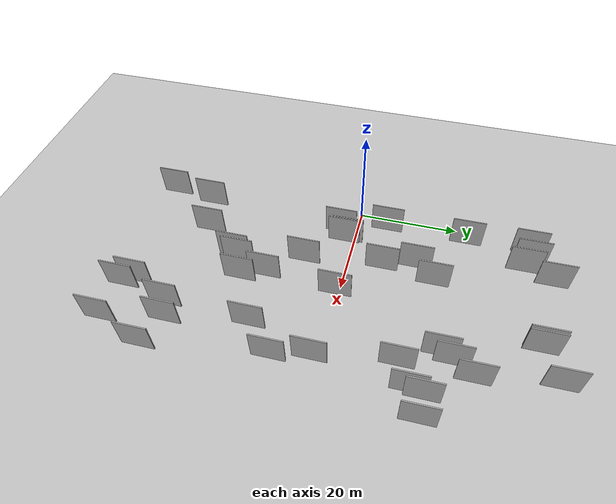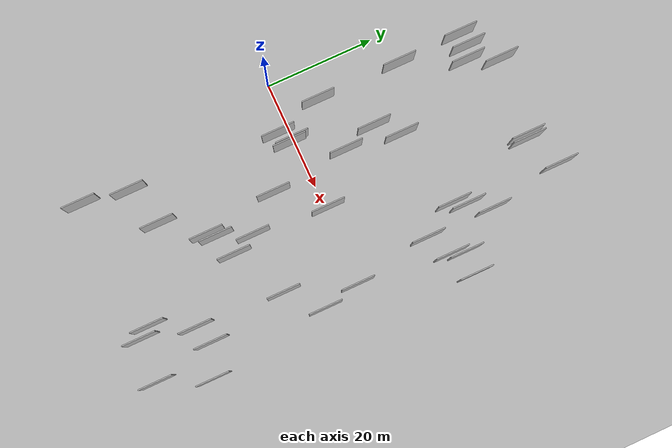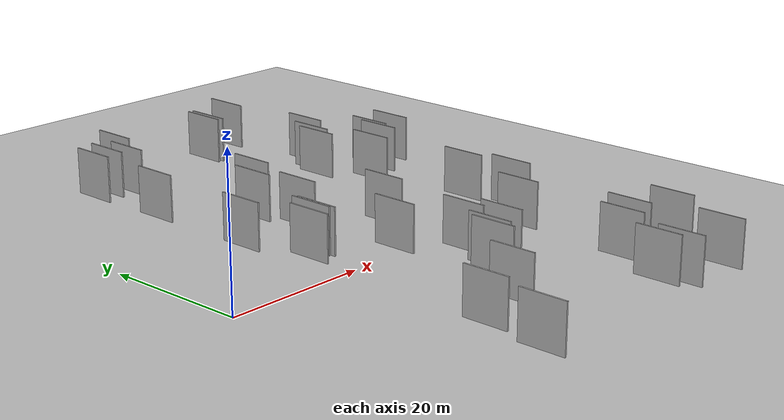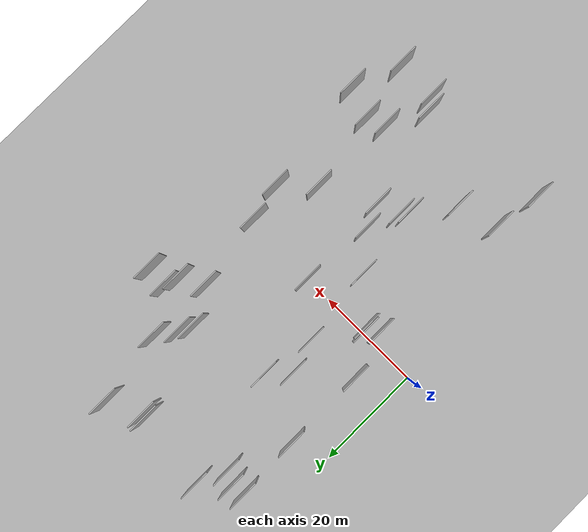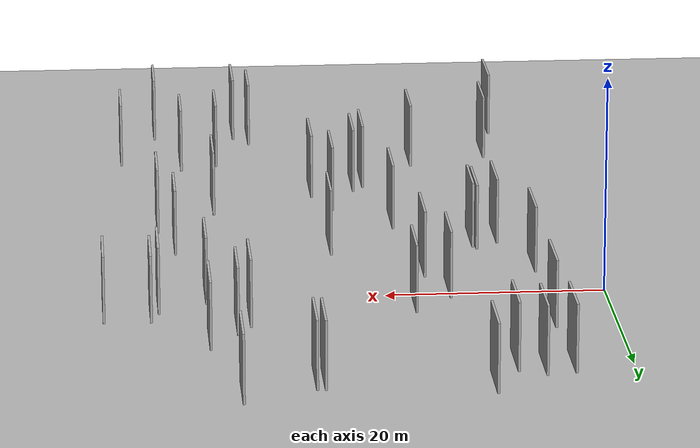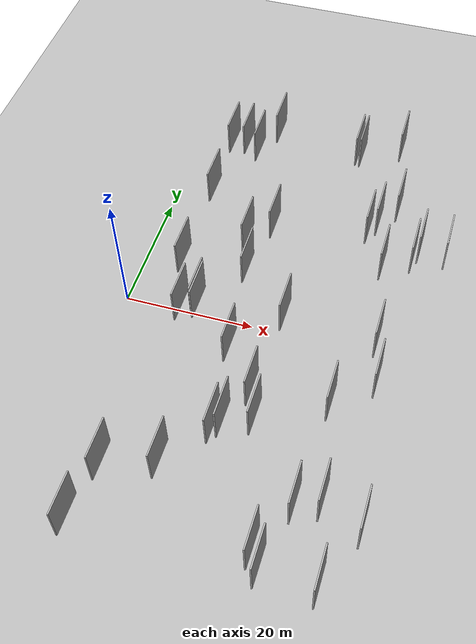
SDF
<?xml version="1.0" encoding="utf-8"?>

<sdf version="1.6">

   <world name="default">

      <gui fullscreen="0">

         <camera name="user_camera">

            <pose>-15 0 4.57585 0 0 0</pose>

            <view_controller>orbit</view_controller>

         </camera>

      </gui>

      <scene>

         <sky>

           <clouds>

             <speed>12</speed>

           </clouds>

         </sky>

         <ambient>0.4 0.4 0.4 1</ambient>

         <background>0.7 0.7 0.7 1</background>

         <shadows>1</shadows>

      </scene>

      <gravity>0 0 -9.8066</gravity>

      <magnetic_field>6e-06 2.3e-05 -4.2e-05</magnetic_field>

      <physics default="0" name="default_physics" type="ode">

         <ode>

            <solver>

               <type>quick</type>

               <iters>10</iters>

               <sor>1.0</sor>

               <use_dynamic_moi_rescaling>0</use_dynamic_moi_rescaling>

            </solver>

            <constraints>

               <cfm>0</cfm>

               <erp>0.2</erp>

               <contact_max_correcting_vel>100</contact_max_correcting_vel>

               <contact_surface_layer>0.001</contact_surface_layer>

            </constraints>

         </ode>

         <max_step_size>0.004</max_step_size>

         <real_time_factor>1</real_time_factor>

         <real_time_update_rate>250</real_time_update_rate>

      </physics>

      <light name="sun" type="directional">

         <cast_shadows>1</cast_shadows>

         <pose>0 0 10 0 0 0</pose>

         <diffuse>0.8 0.8 0.8 1</diffuse>

         <specular>0.2 0.2 0.2 1</specular>

         <attenuation>

            <range>1000</range>

            <constant>0.9</constant>

            <linear>0.01</linear>

            <quadratic>0.001</quadratic>

         </attenuation>

         <direction>-0.5 0.1 -0.9</direction>

      </light>

      <include>

         <name>ground_plane_1</name>

         <uri>model://HANNAS_ground_plane</uri>

         <pose>0 0 0  0 0 0</pose>

      </include>

      <include>

         <name>ground_plane_2</name>

         <uri>model://HANNAS_ground_plane</uri>

         <pose>100 0 0  0 0 0</pose>

      </include>

      <model name="HANNAS_wall_1">

         <static>1</static>

         <pose frame="">39.0062 -0.8579 5.0 0.000000 0.000000 1.570796</pose>

         <link name="link">

            <pose frame="">0 0 3.00 0 0 0</pose>

            <collision name="collision">

               <geometry>

                  <box>

                     <size>6.00 0.2 6.00</size>

                  </box>

               </geometry>

               <max_contacts>10</max_contacts>

               <surface>

                  <contact>

                     <ode/>

                  </contact>

                  <bounce/>

                  <friction>

                     <torsional>

                        <ode/>

                     </torsional>

                     <ode/>

                  </friction>

               </surface>

            </collision>

            <visual name="visual">

               <cast_shadows>0</cast_shadows>

               <geometry>

                  <box>

                     <size>6.00 0.2 6.00</size>

                  </box>

               </geometry>

               <material>

                  <script>

                     <uri>model://HANNAS_wall/materials/scripts</uri>

                     <uri>model://HANNAS_wall/materials/textures</uri>

                     <name>vrc/HANNAS_wall</name>

                  </script>

               </material>

            </visual>

            <self_collide>0</self_collide>

            <enable_wind>0</enable_wind>

            <kinematic>0</kinematic>

         </link>

      </model>

      <model name="HANNAS_wall_2">

         <static>1</static>

         <pose frame="">7.4151 6.3109 5.0 0.000000 0.000000 1.570796</pose>

         <link name="link">

            <pose frame="">0 0 3.00 0 0 0</pose>

            <collision name="collision">

               <geometry>

                  <box>

                     <size>6.00 0.2 6.00</size>

                  </box>

               </geometry>

               <max_contacts>10</max_contacts>

               <surface>

                  <contact>

                     <ode/>

                  </contact>

                  <bounce/>

                  <friction>

                     <torsional>

                        <ode/>

                     </torsional>

                     <ode/>

                  </friction>

               </surface>

            </collision>

            <visual name="visual">

               <cast_shadows>0</cast_shadows>

               <geometry>

                  <box>

                     <size>6.00 0.2 6.00</size>

                  </box>

               </geometry>

               <material>

                  <script>

                     <uri>model://HANNAS_wall/materials/scripts</uri>

                     <uri>model://HANNAS_wall/materials/textures</uri>

                     <name>vrc/HANNAS_wall</name>

                  </script>

               </material>

            </visual>

            <self_collide>0</self_collide>

            <enable_wind>0</enable_wind>

            <kinematic>0</kinematic>

         </link>

      </model>

      <model name="HANNAS_wall_3">

         <static>1</static>

         <pose frame="">9.5300 33.5643 5.0 0.000000 0.000000 1.570796</pose>

         <link name="link">

            <pose frame="">0 0 3.00 0 0 0</pose>

            <collision name="collision">

               <geometry>

                  <box>

                     <size>6.00 0.2 6.00</size>

                  </box>

               </geometry>

               <max_contacts>10</max_contacts>

               <surface>

                  <contact>

                     <ode/>

                  </contact>

                  <bounce/>

                  <friction>

                     <torsional>

                        <ode/>

                     </torsional>

                     <ode/>

                  </friction>

               </surface>

            </collision>

            <visual name="visual">

               <cast_shadows>0</cast_shadows>

               <geometry>

                  <box>

                     <size>6.00 0.2 6.00</size>

                  </box>

               </geometry>

               <material>

                  <script>

                     <uri>model://HANNAS_wall/materials/scripts</uri>

                     <uri>model://HANNAS_wall/materials/textures</uri>

                     <name>vrc/HANNAS_wall</name>

                  </script>

               </material>

            </visual>

            <self_collide>0</self_collide>

            <enable_wind>0</enable_wind>

            <kinematic>0</kinematic>

         </link>

      </model>

      <model name="HANNAS_wall_4">

         <static>1</static>

         <pose frame="">34.2596 -28.3385 5.0 0.000000 0.000000 1.570796</pose>

         <link name="link">

            <pose frame="">0 0 3.00 0 0 0</pose>

            <collision name="collision">

               <geometry>

                  <box>

                     <size>6.00 0.2 6.00</size>

                  </box>

               </geometry>

               <max_contacts>10</max_contacts>

               <surface>

                  <contact>

                     <ode/>

                  </contact>

                  <bounce/>

                  <friction>

                     <torsional>

                        <ode/>

                     </torsional>

                     <ode/>

                  </friction>

               </surface>

            </collision>

            <visual name="visual">

               <cast_shadows>0</cast_shadows>

               <geometry>

                  <box>

                     <size>6.00 0.2 6.00</size>

                  </box>

               </geometry>

               <material>

                  <script>

                     <uri>model://HANNAS_wall/materials/scripts</uri>

                     <uri>model://HANNAS_wall/materials/textures</uri>

                     <name>vrc/HANNAS_wall</name>

                  </script>

               </material>

            </visual>

            <self_collide>0</self_collide>

            <enable_wind>0</enable_wind>

            <kinematic>0</kinematic>

         </link>

      </model>

      <model name="HANNAS_wall_5">

         <static>1</static>

         <pose frame="">11.9339 -0.6346 5.0 0.000000 0.000000 1.570796</pose>

         <link name="link">

            <pose frame="">0 0 3.00 0 0 0</pose>

            <collision name="collision">

               <geometry>

                  <box>

                     <size>6.00 0.2 6.00</size>

                  </box>

               </geometry>

               <max_contacts>10</max_contacts>

               <surface>

                  <contact>

                     <ode/>

                  </contact>

                  <bounce/>

                  <friction>

                     <torsional>

                        <ode/>

                     </torsional>

                     <ode/>

                  </friction>

               </surface>

            </collision>

            <visual name="visual">

               <cast_shadows>0</cast_shadows>

               <geometry>

                  <box>

                     <size>6.00 0.2 6.00</size>

                  </box>

               </geometry>

               <material>

                  <script>

                     <uri>model://HANNAS_wall/materials/scripts</uri>

                     <uri>model://HANNAS_wall/materials/textures</uri>

                     <name>vrc/HANNAS_wall</name>

                  </script>

               </material>

            </visual>

            <self_collide>0</self_collide>

            <enable_wind>0</enable_wind>

            <kinematic>0</kinematic>

         </link>

      </model>

      <model name="HANNAS_wall_6">

         <static>1</static>

         <pose frame="">15.5540 13.0088 5.0 0.000000 0.000000 1.570796</pose>

         <link name="link">

            <pose frame="">0 0 3.00 0 0 0</pose>

            <collision name="collision">

               <geometry>

                  <box>

                     <size>6.00 0.2 6.00</size>

                  </box>

               </geometry>

               <max_contacts>10</max_contacts>

               <surface>

                  <contact>

                     <ode/>

                  </contact>

                  <bounce/>

                  <friction>

                     <torsional>

                        <ode/>

                     </torsional>

                     <ode/>

                  </friction>

               </surface>

            </collision>

            <visual name="visual">

               <cast_shadows>0</cast_shadows>

               <geometry>

                  <box>

                     <size>6.00 0.2 6.00</size>

                  </box>

               </geometry>

               <material>

                  <script>

                     <uri>model://HANNAS_wall/materials/scripts</uri>

                     <uri>model://HANNAS_wall/materials/textures</uri>

                     <name>vrc/HANNAS_wall</name>

                  </script>

               </material>

            </visual>

            <self_collide>0</self_collide>

            <enable_wind>0</enable_wind>

            <kinematic>0</kinematic>

         </link>

      </model>

      <model name="HANNAS_wall_7">

         <static>1</static>

         <pose frame="">7.3764 21.5910 5.0 0.000000 0.000000 1.570796</pose>

         <link name="link">

            <pose frame="">0 0 3.00 0 0 0</pose>

            <collision name="collision">

               <geometry>

                  <box>

                     <size>6.00 0.2 6.00</size>

                  </box>

               </geometry>

               <max_contacts>10</max_contacts>

               <surface>

                  <contact>

                     <ode/>

                  </contact>

                  <bounce/>

                  <friction>

                     <torsional>

                        <ode/>

                     </torsional>

                     <ode/>

                  </friction>

               </surface>

            </collision>

            <visual name="visual">

               <cast_shadows>0</cast_shadows>

               <geometry>

                  <box>

                     <size>6.00 0.2 6.00</size>

                  </box>

               </geometry>

               <material>

                  <script>

                     <uri>model://HANNAS_wall/materials/scripts</uri>

                     <uri>model://HANNAS_wall/materials/textures</uri>

                     <name>vrc/HANNAS_wall</name>

                  </script>

               </material>

            </visual>

            <self_collide>0</self_collide>

            <enable_wind>0</enable_wind>

            <kinematic>0</kinematic>

         </link>

      </model>

      <model name="HANNAS_wall_8">

         <static>1</static>

         <pose frame="">15.6674 -27.0964 5.0 0.000000 0.000000 1.570796</pose>

         <link name="link">

            <pose frame="">0 0 3.00 0 0 0</pose>

            <collision name="collision">

               <geometry>

                  <box>

                     <size>6.00 0.2 6.00</size>

                  </box>

               </geometry>

               <max_contacts>10</max_contacts>

               <surface>

                  <contact>

                     <ode/>

                  </contact>

                  <bounce/>

                  <friction>

                     <torsional>

                        <ode/>

                     </torsional>

                     <ode/>

                  </friction>

               </surface>

            </collision>

            <visual name="visual">

               <cast_shadows>0</cast_shadows>

               <geometry>

                  <box>

                     <size>6.00 0.2 6.00</size>

                  </box>

               </geometry>

               <material>

                  <script>

                     <uri>model://HANNAS_wall/materials/scripts</uri>

                     <uri>model://HANNAS_wall/materials/textures</uri>

                     <name>vrc/HANNAS_wall</name>

                  </script>

               </material>

            </visual>

            <self_collide>0</self_collide>

            <enable_wind>0</enable_wind>

            <kinematic>0</kinematic>

         </link>

      </model>

      <model name="HANNAS_wall_9">

         <static>1</static>

         <pose frame="">14.0263 37.6488 5.0 0.000000 0.000000 1.570796</pose>

         <link name="link">

            <pose frame="">0 0 3.00 0 0 0</pose>

            <collision name="collision">

               <geometry>

                  <box>

                     <size>6.00 0.2 6.00</size>

                  </box>

               </geometry>

               <max_contacts>10</max_contacts>

               <surface>

                  <contact>

                     <ode/>

                  </contact>

                  <bounce/>

                  <friction>

                     <torsional>

                        <ode/>

                     </torsional>

                     <ode/>

                  </friction>

               </surface>

            </collision>

            <visual name="visual">

               <cast_shadows>0</cast_shadows>

               <geometry>

                  <box>

                     <size>6.00 0.2 6.00</size>

                  </box>

               </geometry>

               <material>

                  <script>

                     <uri>model://HANNAS_wall/materials/scripts</uri>

                     <uri>model://HANNAS_wall/materials/textures</uri>

                     <name>vrc/HANNAS_wall</name>

                  </script>

               </material>

            </visual>

            <self_collide>0</self_collide>

            <enable_wind>0</enable_wind>

            <kinematic>0</kinematic>

         </link>

      </model>

      <model name="HANNAS_wall_10">

         <static>1</static>

         <pose frame="">11.7766 32.4227 5.0 0.000000 0.000000 1.570796</pose>

         <link name="link">

            <pose frame="">0 0 3.00 0 0 0</pose>

            <collision name="collision">

               <geometry>

                  <box>

                     <size>6.00 0.2 6.00</size>

                  </box>

               </geometry>

               <max_contacts>10</max_contacts>

               <surface>

                  <contact>

                     <ode/>

                  </contact>

                  <bounce/>

                  <friction>

                     <torsional>

                        <ode/>

                     </torsional>

                     <ode/>

                  </friction>

               </surface>

            </collision>

            <visual name="visual">

               <cast_shadows>0</cast_shadows>

               <geometry>

                  <box>

                     <size>6.00 0.2 6.00</size>

                  </box>

               </geometry>

               <material>

                  <script>

                     <uri>model://HANNAS_wall/materials/scripts</uri>

                     <uri>model://HANNAS_wall/materials/textures</uri>

                     <name>vrc/HANNAS_wall</name>

                  </script>

               </material>

            </visual>

            <self_collide>0</self_collide>

            <enable_wind>0</enable_wind>

            <kinematic>0</kinematic>

         </link>

      </model>

      <model name="HANNAS_wall_11">

         <static>1</static>

         <pose frame="">9.9371 -2.2960 5.0 0.000000 0.000000 1.570796</pose>

         <link name="link">

            <pose frame="">0 0 3.00 0 0 0</pose>

            <collision name="collision">

               <geometry>

                  <box>

                     <size>6.00 0.2 6.00</size>

                  </box>

               </geometry>

               <max_contacts>10</max_contacts>

               <surface>

                  <contact>

                     <ode/>

                  </contact>

                  <bounce/>

                  <friction>

                     <torsional>

                        <ode/>

                     </torsional>

                     <ode/>

                  </friction>

               </surface>

            </collision>

            <visual name="visual">

               <cast_shadows>0</cast_shadows>

               <geometry>

                  <box>

                     <size>6.00 0.2 6.00</size>

                  </box>

               </geometry>

               <material>

                  <script>

                     <uri>model://HANNAS_wall/materials/scripts</uri>

                     <uri>model://HANNAS_wall/materials/textures</uri>

                     <name>vrc/HANNAS_wall</name>

                  </script>

               </material>

            </visual>

            <self_collide>0</self_collide>

            <enable_wind>0</enable_wind>

            <kinematic>0</kinematic>

         </link>

      </model>

      <model name="HANNAS_wall_12">

         <static>1</static>

         <pose frame="">43.3051 -29.1401 5.0 0.000000 0.000000 1.570796</pose>

         <link name="link">

            <pose frame="">0 0 3.00 0 0 0</pose>

            <collision name="collision">

               <geometry>

                  <box>

                     <size>6.00 0.2 6.00</size>

                  </box>

               </geometry>

               <max_contacts>10</max_contacts>

               <surface>

                  <contact>

                     <ode/>

                  </contact>

                  <bounce/>

                  <friction>

                     <torsional>

                        <ode/>

                     </torsional>

                     <ode/>

                  </friction>

               </surface>

            </collision>

            <visual name="visual">

               <cast_shadows>0</cast_shadows>

               <geometry>

                  <box>

                     <size>6.00 0.2 6.00</size>

                  </box>

               </geometry>

               <material>

                  <script>

                     <uri>model://HANNAS_wall/materials/scripts</uri>

                     <uri>model://HANNAS_wall/materials/textures</uri>

                     <name>vrc/HANNAS_wall</name>

                  </script>

               </material>

            </visual>

            <self_collide>0</self_collide>

            <enable_wind>0</enable_wind>

            <kinematic>0</kinematic>

         </link>

      </model>

      <model name="HANNAS_wall_13">

         <static>1</static>

         <pose frame="">36.7653 13.1344 5.0 0.000000 0.000000 1.570796</pose>

         <link name="link">

            <pose frame="">0 0 3.00 0 0 0</pose>

            <collision name="collision">

               <geometry>

                  <box>

                     <size>6.00 0.2 6.00</size>

                  </box>

               </geometry>

               <max_contacts>10</max_contacts>

               <surface>

                  <contact>

                     <ode/>

                  </contact>

                  <bounce/>

                  <friction>

                     <torsional>

                        <ode/>

                     </torsional>

                     <ode/>

                  </friction>

               </surface>

            </collision>

            <visual name="visual">

               <cast_shadows>0</cast_shadows>

               <geometry>

                  <box>

                     <size>6.00 0.2 6.00</size>

                  </box>

               </geometry>

               <material>

                  <script>

                     <uri>model://HANNAS_wall/materials/scripts</uri>

                     <uri>model://HANNAS_wall/materials/textures</uri>

                     <name>vrc/HANNAS_wall</name>

                  </script>

               </material>

            </visual>

            <self_collide>0</self_collide>

            <enable_wind>0</enable_wind>

            <kinematic>0</kinematic>

         </link>

      </model>

      <model name="HANNAS_wall_14">

         <static>1</static>

         <pose frame="">18.8449 16.6575 5.0 0.000000 0.000000 1.570796</pose>

         <link name="link">

            <pose frame="">0 0 3.00 0 0 0</pose>

            <collision name="collision">

               <geometry>

                  <box>

                     <size>6.00 0.2 6.00</size>

                  </box>

               </geometry>

               <max_contacts>10</max_contacts>

               <surface>

                  <contact>

                     <ode/>

                  </contact>

                  <bounce/>

                  <friction>

                     <torsional>

                        <ode/>

                     </torsional>

                     <ode/>

                  </friction>

               </surface>

            </collision>

            <visual name="visual">

               <cast_shadows>0</cast_shadows>

               <geometry>

                  <box>

                     <size>6.00 0.2 6.00</size>

                  </box>

               </geometry>

               <material>

                  <script>

                     <uri>model://HANNAS_wall/materials/scripts</uri>

                     <uri>model://HANNAS_wall/materials/textures</uri>

                     <name>vrc/HANNAS_wall</name>

                  </script>

               </material>

            </visual>

            <self_collide>0</self_collide>

            <enable_wind>0</enable_wind>

            <kinematic>0</kinematic>

         </link>

      </model>

      <model name="HANNAS_wall_15">

         <static>1</static>

         <pose frame="">20.7677 -20.3473 5.0 0.000000 0.000000 1.570796</pose>

         <link name="link">

            <pose frame="">0 0 3.00 0 0 0</pose>

            <collision name="collision">

               <geometry>

                  <box>

                     <size>6.00 0.2 6.00</size>

                  </box>

               </geometry>

               <max_contacts>10</max_contacts>

               <surface>

                  <contact>

                     <ode/>

                  </contact>

                  <bounce/>

                  <friction>

                     <torsional>

                        <ode/>

                     </torsional>

                     <ode/>

                  </friction>

               </surface>

            </collision>

            <visual name="visual">

               <cast_shadows>0</cast_shadows>

               <geometry>

                  <box>

                     <size>6.00 0.2 6.00</size>

                  </box>

               </geometry>

               <material>

                  <script>

                     <uri>model://HANNAS_wall/materials/scripts</uri>

                     <uri>model://HANNAS_wall/materials/textures</uri>

                     <name>vrc/HANNAS_wall</name>

                  </script>

               </material>

            </visual>

            <self_collide>0</self_collide>

            <enable_wind>0</enable_wind>

            <kinematic>0</kinematic>

         </link>

      </model>

      <model name="HANNAS_wall_16">

         <static>1</static>

         <pose frame="">40.9358 15.5813 5.0 0.000000 0.000000 1.570796</pose>

         <link name="link">

            <pose frame="">0 0 3.00 0 0 0</pose>

            <collision name="collision">

               <geometry>

                  <box>

                     <size>6.00 0.2 6.00</size>

                  </box>

               </geometry>

               <max_contacts>10</max_contacts>

               <surface>

                  <contact>

                     <ode/>

                  </contact>

                  <bounce/>

                  <friction>

                     <torsional>

                        <ode/>

                     </torsional>

                     <ode/>

                  </friction>

               </surface>

            </collision>

            <visual name="visual">

               <cast_shadows>0</cast_shadows>

               <geometry>

                  <box>

                     <size>6.00 0.2 6.00</size>

                  </box>

               </geometry>

               <material>

                  <script>

                     <uri>model://HANNAS_wall/materials/scripts</uri>

                     <uri>model://HANNAS_wall/materials/textures</uri>

                     <name>vrc/HANNAS_wall</name>

                  </script>

               </material>

            </visual>

            <self_collide>0</self_collide>

            <enable_wind>0</enable_wind>

            <kinematic>0</kinematic>

         </link>

      </model>

      <model name="HANNAS_wall_17">

         <static>1</static>

         <pose frame="">32.2432 -37.5218 5.0 0.000000 0.000000 1.570796</pose>

         <link name="link">

            <pose frame="">0 0 3.00 0 0 0</pose>

            <collision name="collision">

               <geometry>

                  <box>

                     <size>6.00 0.2 6.00</size>

                  </box>

               </geometry>

               <max_contacts>10</max_contacts>

               <surface>

                  <contact>

                     <ode/>

                  </contact>

                  <bounce/>

                  <friction>

                     <torsional>

                        <ode/>

                     </torsional>

                     <ode/>

                  </friction>

               </surface>

            </collision>

            <visual name="visual">

               <cast_shadows>0</cast_shadows>

               <geometry>

                  <box>

                     <size>6.00 0.2 6.00</size>

                  </box>

               </geometry>

               <material>

                  <script>

                     <uri>model://HANNAS_wall/materials/scripts</uri>

                     <uri>model://HANNAS_wall/materials/textures</uri>

                     <name>vrc/HANNAS_wall</name>

                  </script>

               </material>

            </visual>

            <self_collide>0</self_collide>

            <enable_wind>0</enable_wind>

            <kinematic>0</kinematic>

         </link>

      </model>

      <model name="HANNAS_wall_18">

         <static>1</static>

         <pose frame="">30.8083 -35.4986 5.0 0.000000 0.000000 1.570796</pose>

         <link name="link">

            <pose frame="">0 0 3.00 0 0 0</pose>

            <collision name="collision">

               <geometry>

                  <box>

                     <size>6.00 0.2 6.00</size>

                  </box>

               </geometry>

               <max_contacts>10</max_contacts>

               <surface>

                  <contact>

                     <ode/>

                  </contact>

                  <bounce/>

                  <friction>

                     <torsional>

                        <ode/>

                     </torsional>

                     <ode/>

                  </friction>

               </surface>

            </collision>

            <visual name="visual">

               <cast_shadows>0</cast_shadows>

               <geometry>

                  <box>

                     <size>6.00 0.2 6.00</size>

                  </box>

               </geometry>

               <material>

                  <script>

                     <uri>model://HANNAS_wall/materials/scripts</uri>

                     <uri>model://HANNAS_wall/materials/textures</uri>

                     <name>vrc/HANNAS_wall</name>

                  </script>

               </material>

            </visual>

            <self_collide>0</self_collide>

            <enable_wind>0</enable_wind>

            <kinematic>0</kinematic>

         </link>

      </model>

      <model name="HANNAS_wall_19">

         <static>1</static>

         <pose frame="">34.7300 38.7609 5.0 0.000000 0.000000 1.570796</pose>

         <link name="link">

            <pose frame="">0 0 3.00 0 0 0</pose>

            <collision name="collision">

               <geometry>

                  <box>

                     <size>6.00 0.2 6.00</size>

                  </box>

               </geometry>

               <max_contacts>10</max_contacts>

               <surface>

                  <contact>

                     <ode/>

                  </contact>

                  <bounce/>

                  <friction>

                     <torsional>

                        <ode/>

                     </torsional>

                     <ode/>

                  </friction>

               </surface>

            </collision>

            <visual name="visual">

               <cast_shadows>0</cast_shadows>

               <geometry>

                  <box>

                     <size>6.00 0.2 6.00</size>

                  </box>

               </geometry>

               <material>

                  <script>

                     <uri>model://HANNAS_wall/materials/scripts</uri>

                     <uri>model://HANNAS_wall/materials/textures</uri>

                     <name>vrc/HANNAS_wall</name>

                  </script>

               </material>

            </visual>

            <self_collide>0</self_collide>

            <enable_wind>0</enable_wind>

            <kinematic>0</kinematic>

         </link>

      </model>

      <model name="HANNAS_wall_20">

         <static>1</static>

         <pose frame="">33.2131 19.5951 5.0 0.000000 0.000000 1.570796</pose>

         <link name="link">

            <pose frame="">0 0 3.00 0 0 0</pose>

            <collision name="collision">

               <geometry>

                  <box>

                     <size>6.00 0.2 6.00</size>

                  </box>

               </geometry>

               <max_contacts>10</max_contacts>

               <surface>

                  <contact>

                     <ode/>

                  </contact>

                  <bounce/>

                  <friction>

                     <torsional>

                        <ode/>

                     </torsional>

                     <ode/>

                  </friction>

               </surface>

            </collision>

            <visual name="visual">

               <cast_shadows>0</cast_shadows>

               <geometry>

                  <box>

                     <size>6.00 0.2 6.00</size>

                  </box>

               </geometry>

               <material>

                  <script>

                     <uri>model://HANNAS_wall/materials/scripts</uri>

                     <uri>model://HANNAS_wall/materials/textures</uri>

                     <name>vrc/HANNAS_wall</name>

                  </script>

               </material>

            </visual>

            <self_collide>0</self_collide>

            <enable_wind>0</enable_wind>

            <kinematic>0</kinematic>

         </link>

      </model>

      <model name="HANNAS_wall_21">

         <static>1</static>

         <pose frame="">27.9153 35.9146 5.0 0.000000 0.000000 1.570796</pose>

         <link name="link">

            <pose frame="">0 0 3.00 0 0 0</pose>

            <collision name="collision">

               <geometry>

                  <box>

                     <size>6.00 0.2 6.00</size>

                  </box>

               </geometry>

               <max_contacts>10</max_contacts>

               <surface>

                  <contact>

                     <ode/>

                  </contact>

                  <bounce/>

                  <friction>

                     <torsional>

                        <ode/>

                     </torsional>

                     <ode/>

                  </friction>

               </surface>

            </collision>

            <visual name="visual">

               <cast_shadows>0</cast_shadows>

               <geometry>

                  <box>

                     <size>6.00 0.2 6.00</size>

                  </box>

               </geometry>

               <material>

                  <script>

                     <uri>model://HANNAS_wall/materials/scripts</uri>

                     <uri>model://HANNAS_wall/materials/textures</uri>

                     <name>vrc/HANNAS_wall</name>

                  </script>

               </material>

            </visual>

            <self_collide>0</self_collide>

            <enable_wind>0</enable_wind>

            <kinematic>0</kinematic>

         </link>

      </model>

      <model name="HANNAS_wall_22">

         <static>1</static>

         <pose frame="">7.0808 33.2060 5.0 0.000000 0.000000 1.570796</pose>

         <link name="link">

            <pose frame="">0 0 3.00 0 0 0</pose>

            <collision name="collision">

               <geometry>

                  <box>

                     <size>6.00 0.2 6.00</size>

                  </box>

               </geometry>

               <max_contacts>10</max_contacts>

               <surface>

                  <contact>

                     <ode/>

                  </contact>

                  <bounce/>

                  <friction>

                     <torsional>

                        <ode/>

                     </torsional>

                     <ode/>

                  </friction>

               </surface>

            </collision>

            <visual name="visual">

               <cast_shadows>0</cast_shadows>

               <geometry>

                  <box>

                     <size>6.00 0.2 6.00</size>

                  </box>

               </geometry>

               <material>

                  <script>

                     <uri>model://HANNAS_wall/materials/scripts</uri>

                     <uri>model://HANNAS_wall/materials/textures</uri>

                     <name>vrc/HANNAS_wall</name>

                  </script>

               </material>

            </visual>

            <self_collide>0</self_collide>

            <enable_wind>0</enable_wind>

            <kinematic>0</kinematic>

         </link>

      </model>

      <model name="HANNAS_wall_23">

         <static>1</static>

         <pose frame="">24.0673 -13.3480 5.0 0.000000 0.000000 1.570796</pose>

         <link name="link">

            <pose frame="">0 0 3.00 0 0 0</pose>

            <collision name="collision">

               <geometry>

                  <box>

                     <size>6.00 0.2 6.00</size>

                  </box>

               </geometry>

               <max_contacts>10</max_contacts>

               <surface>

                  <contact>

                     <ode/>

                  </contact>

                  <bounce/>

                  <friction>

                     <torsional>

                        <ode/>

                     </torsional>

                     <ode/>

                  </friction>

               </surface>

            </collision>

            <visual name="visual">

               <cast_shadows>0</cast_shadows>

               <geometry>

                  <box>

                     <size>6.00 0.2 6.00</size>

                  </box>

               </geometry>

               <material>

                  <script>

                     <uri>model://HANNAS_wall/materials/scripts</uri>

                     <uri>model://HANNAS_wall/materials/textures</uri>

                     <name>vrc/HANNAS_wall</name>

                  </script>

               </material>

            </visual>

            <self_collide>0</self_collide>

            <enable_wind>0</enable_wind>

            <kinematic>0</kinematic>

         </link>

      </model>

      <model name="HANNAS_wall_24">

         <static>1</static>

         <pose frame="">39.9086 -37.8984 5.0 0.000000 0.000000 1.570796</pose>

         <link name="link">

            <pose frame="">0 0 3.00 0 0 0</pose>

            <collision name="collision">

               <geometry>

                  <box>

                     <size>6.00 0.2 6.00</size>

                  </box>

               </geometry>

               <max_contacts>10</max_contacts>

               <surface>

                  <contact>

                     <ode/>

                  </contact>

                  <bounce/>

                  <friction>

                     <torsional>

                        <ode/>

                     </torsional>

                     <ode/>

                  </friction>

               </surface>

            </collision>

            <visual name="visual">

               <cast_shadows>0</cast_shadows>

               <geometry>

                  <box>

                     <size>6.00 0.2 6.00</size>

                  </box>

               </geometry>

               <material>

                  <script>

                     <uri>model://HANNAS_wall/materials/scripts</uri>

                     <uri>model://HANNAS_wall/materials/textures</uri>

                     <name>vrc/HANNAS_wall</name>

                  </script>

               </material>

            </visual>

            <self_collide>0</self_collide>

            <enable_wind>0</enable_wind>

            <kinematic>0</kinematic>

         </link>

      </model>

      <model name="HANNAS_wall_25">

         <static>1</static>

         <pose frame="">12.2355 -1.2229 5.0 0.000000 0.000000 1.570796</pose>

         <link name="link">

            <pose frame="">0 0 3.00 0 0 0</pose>

            <collision name="collision">

               <geometry>

                  <box>

                     <size>6.00 0.2 6.00</size>

                  </box>

               </geometry>

               <max_contacts>10</max_contacts>

               <surface>

                  <contact>

                     <ode/>

                  </contact>

                  <bounce/>

                  <friction>

                     <torsional>

                        <ode/>

                     </torsional>

                     <ode/>

                  </friction>

               </surface>

            </collision>

            <visual name="visual">

               <cast_shadows>0</cast_shadows>

               <geometry>

                  <box>

                     <size>6.00 0.2 6.00</size>

                  </box>

               </geometry>

               <material>

                  <script>

                     <uri>model://HANNAS_wall/materials/scripts</uri>

                     <uri>model://HANNAS_wall/materials/textures</uri>

                     <name>vrc/HANNAS_wall</name>

                  </script>

               </material>

            </visual>

            <self_collide>0</self_collide>

            <enable_wind>0</enable_wind>

            <kinematic>0</kinematic>

         </link>

      </model>

      <model name="HANNAS_wall_26">

         <static>1</static>

         <pose frame="">41.6468 17.8632 5.0 0.000000 0.000000 1.570796</pose>

         <link name="link">

            <pose frame="">0 0 3.00 0 0 0</pose>

            <collision name="collision">

               <geometry>

                  <box>

                     <size>6.00 0.2 6.00</size>

                  </box>

               </geometry>

               <max_contacts>10</max_contacts>

               <surface>

                  <contact>

                     <ode/>

                  </contact>

                  <bounce/>

                  <friction>

                     <torsional>

                        <ode/>

                     </torsional>

                     <ode/>

                  </friction>

               </surface>

            </collision>

            <visual name="visual">

               <cast_shadows>0</cast_shadows>

               <geometry>

                  <box>

                     <size>6.00 0.2 6.00</size>

                  </box>

               </geometry>

               <material>

                  <script>

                     <uri>model://HANNAS_wall/materials/scripts</uri>

                     <uri>model://HANNAS_wall/materials/textures</uri>

                     <name>vrc/HANNAS_wall</name>

                  </script>

               </material>

            </visual>

            <self_collide>0</self_collide>

            <enable_wind>0</enable_wind>

            <kinematic>0</kinematic>

         </link>

      </model>

      <model name="HANNAS_wall_27">

         <static>1</static>

         <pose frame="">40.3937 -7.4421 5.0 0.000000 0.000000 1.570796</pose>

         <link name="link">

            <pose frame="">0 0 3.00 0 0 0</pose>

            <collision name="collision">

               <geometry>

                  <box>

                     <size>6.00 0.2 6.00</size>

                  </box>

               </geometry>

               <max_contacts>10</max_contacts>

               <surface>

                  <contact>

                     <ode/>

                  </contact>

                  <bounce/>

                  <friction>

                     <torsional>

                        <ode/>

                     </torsional>

                     <ode/>

                  </friction>

               </surface>

            </collision>

            <visual name="visual">

               <cast_shadows>0</cast_shadows>

               <geometry>

                  <box>

                     <size>6.00 0.2 6.00</size>

                  </box>

               </geometry>

               <material>

                  <script>

                     <uri>model://HANNAS_wall/materials/scripts</uri>

                     <uri>model://HANNAS_wall/materials/textures</uri>

                     <name>vrc/HANNAS_wall</name>

                  </script>

               </material>

            </visual>

            <self_collide>0</self_collide>

            <enable_wind>0</enable_wind>

            <kinematic>0</kinematic>

         </link>

      </model>

      <model name="HANNAS_wall_28">

         <static>1</static>

         <pose frame="">7.0777 -37.6450 5.0 0.000000 0.000000 1.570796</pose>

         <link name="link">

            <pose frame="">0 0 3.00 0 0 0</pose>

            <collision name="collision">

               <geometry>

                  <box>

                     <size>6.00 0.2 6.00</size>

                  </box>

               </geometry>

               <max_contacts>10</max_contacts>

               <surface>

                  <contact>

                     <ode/>

                  </contact>

                  <bounce/>

                  <friction>

                     <torsional>

                        <ode/>

                     </torsional>

                     <ode/>

                  </friction>

               </surface>

            </collision>

            <visual name="visual">

               <cast_shadows>0</cast_shadows>

               <geometry>

                  <box>

                     <size>6.00 0.2 6.00</size>

                  </box>

               </geometry>

               <material>

                  <script>

                     <uri>model://HANNAS_wall/materials/scripts</uri>

                     <uri>model://HANNAS_wall/materials/textures</uri>

                     <name>vrc/HANNAS_wall</name>

                  </script>

               </material>

            </visual>

            <self_collide>0</self_collide>

            <enable_wind>0</enable_wind>

            <kinematic>0</kinematic>

         </link>

      </model>

      <model name="HANNAS_wall_29">

         <static>1</static>

         <pose frame="">25.1050 0.0536 5.0 0.000000 0.000000 1.570796</pose>

         <link name="link">

            <pose frame="">0 0 3.00 0 0 0</pose>

            <collision name="collision">

               <geometry>

                  <box>

                     <size>6.00 0.2 6.00</size>

                  </box>

               </geometry>

               <max_contacts>10</max_contacts>

               <surface>

                  <contact>

                     <ode/>

                  </contact>

                  <bounce/>

                  <friction>

                     <torsional>

                        <ode/>

                     </torsional>

                     <ode/>

                  </friction>

               </surface>

            </collision>

            <visual name="visual">

               <cast_shadows>0</cast_shadows>

               <geometry>

                  <box>

                     <size>6.00 0.2 6.00</size>

                  </box>

               </geometry>

               <material>

                  <script>

                     <uri>model://HANNAS_wall/materials/scripts</uri>

                     <uri>model://HANNAS_wall/materials/textures</uri>

                     <name>vrc/HANNAS_wall</name>

                  </script>

               </material>

            </visual>

            <self_collide>0</self_collide>

            <enable_wind>0</enable_wind>

            <kinematic>0</kinematic>

         </link>

      </model>

      <model name="HANNAS_wall_30">

         <static>1</static>

         <pose frame="">36.8581 25.3112 5.0 0.000000 0.000000 1.570796</pose>

         <link name="link">

            <pose frame="">0 0 3.00 0 0 0</pose>

            <collision name="collision">

               <geometry>

                  <box>

                     <size>6.00 0.2 6.00</size>

                  </box>

               </geometry>

               <max_contacts>10</max_contacts>

               <surface>

                  <contact>

                     <ode/>

                  </contact>

                  <bounce/>

                  <friction>

                     <torsional>

                        <ode/>

                     </torsional>

                     <ode/>

                  </friction>

               </surface>

            </collision>

            <visual name="visual">

               <cast_shadows>0</cast_shadows>

               <geometry>

                  <box>

                     <size>6.00 0.2 6.00</size>

                  </box>

               </geometry>

               <material>

                  <script>

                     <uri>model://HANNAS_wall/materials/scripts</uri>

                     <uri>model://HANNAS_wall/materials/textures</uri>

                     <name>vrc/HANNAS_wall</name>

                  </script>

               </material>

            </visual>

            <self_collide>0</self_collide>

            <enable_wind>0</enable_wind>

            <kinematic>0</kinematic>

         </link>

      </model>

      <model name="HANNAS_wall_31">

         <static>1</static>

         <pose frame="">34.4015 21.6810 5.0 0.000000 0.000000 1.570796</pose>

         <link name="link">

            <pose frame="">0 0 3.00 0 0 0</pose>

            <collision name="collision">

               <geometry>

                  <box>

                     <size>6.00 0.2 6.00</size>

                  </box>

               </geometry>

               <max_contacts>10</max_contacts>

               <surface>

                  <contact>

                     <ode/>

                  </contact>

                  <bounce/>

                  <friction>

                     <torsional>

                        <ode/>

                     </torsional>

                     <ode/>

                  </friction>

               </surface>

            </collision>

            <visual name="visual">

               <cast_shadows>0</cast_shadows>

               <geometry>

                  <box>

                     <size>6.00 0.2 6.00</size>

                  </box>

               </geometry>

               <material>

                  <script>

                     <uri>model://HANNAS_wall/materials/scripts</uri>

                     <uri>model://HANNAS_wall/materials/textures</uri>

                     <name>vrc/HANNAS_wall</name>

                  </script>

               </material>

            </visual>

            <self_collide>0</self_collide>

            <enable_wind>0</enable_wind>

            <kinematic>0</kinematic>

         </link>

      </model>

      <model name="HANNAS_wall_32">

         <static>1</static>

         <pose frame="">17.3014 7.0189 5.0 0.000000 0.000000 1.570796</pose>

         <link name="link">

            <pose frame="">0 0 3.00 0 0 0</pose>

            <collision name="collision">

               <geometry>

                  <box>

                     <size>6.00 0.2 6.00</size>

                  </box>

               </geometry>

               <max_contacts>10</max_contacts>

               <surface>

                  <contact>

                     <ode/>

                  </contact>

                  <bounce/>

                  <friction>

                     <torsional>

                        <ode/>

                     </torsional>

                     <ode/>

                  </friction>

               </surface>

            </collision>

            <visual name="visual">

               <cast_shadows>0</cast_shadows>

               <geometry>

                  <box>

                     <size>6.00 0.2 6.00</size>

                  </box>

               </geometry>

               <material>

                  <script>

                     <uri>model://HANNAS_wall/materials/scripts</uri>

                     <uri>model://HANNAS_wall/materials/textures</uri>

                     <name>vrc/HANNAS_wall</name>

                  </script>

               </material>

            </visual>

            <self_collide>0</self_collide>

            <enable_wind>0</enable_wind>

            <kinematic>0</kinematic>

         </link>

      </model>

      <model name="HANNAS_wall_33">

         <static>1</static>

         <pose frame="">37.6393 -27.0142 5.0 0.000000 0.000000 1.570796</pose>

         <link name="link">

            <pose frame="">0 0 3.00 0 0 0</pose>

            <collision name="collision">

               <geometry>

                  <box>

                     <size>6.00 0.2 6.00</size>

                  </box>

               </geometry>

               <max_contacts>10</max_contacts>

               <surface>

                  <contact>

                     <ode/>

                  </contact>

                  <bounce/>

                  <friction>

                     <torsional>

                        <ode/>

                     </torsional>

                     <ode/>

                  </friction>

               </surface>

            </collision>

            <visual name="visual">

               <cast_shadows>0</cast_shadows>

               <geometry>

                  <box>

                     <size>6.00 0.2 6.00</size>

                  </box>

               </geometry>

               <material>

                  <script>

                     <uri>model://HANNAS_wall/materials/scripts</uri>

                     <uri>model://HANNAS_wall/materials/textures</uri>

                     <name>vrc/HANNAS_wall</name>

                  </script>

               </material>

            </visual>

            <self_collide>0</self_collide>

            <enable_wind>0</enable_wind>

            <kinematic>0</kinematic>

         </link>

      </model>

      <model name="HANNAS_wall_34">

         <static>1</static>

         <pose frame="">28.6169 35.7764 5.0 0.000000 0.000000 1.570796</pose>

         <link name="link">

            <pose frame="">0 0 3.00 0 0 0</pose>

            <collision name="collision">

               <geometry>

                  <box>

                     <size>6.00 0.2 6.00</size>

                  </box>

               </geometry>

               <max_contacts>10</max_contacts>

               <surface>

                  <contact>

                     <ode/>

                  </contact>

                  <bounce/>

                  <friction>

                     <torsional>

                        <ode/>

                     </torsional>

                     <ode/>

                  </friction>

               </surface>

            </collision>

            <visual name="visual">

               <cast_shadows>0</cast_shadows>

               <geometry>

                  <box>

                     <size>6.00 0.2 6.00</size>

                  </box>

               </geometry>

               <material>

                  <script>

                     <uri>model://HANNAS_wall/materials/scripts</uri>

                     <uri>model://HANNAS_wall/materials/textures</uri>

                     <name>vrc/HANNAS_wall</name>

                  </script>

               </material>

            </visual>

            <self_collide>0</self_collide>

            <enable_wind>0</enable_wind>

            <kinematic>0</kinematic>

         </link>

      </model>

      <model name="HANNAS_wall_35">

         <static>1</static>

         <pose frame="">21.7420 -19.1033 5.0 0.000000 0.000000 1.570796</pose>

         <link name="link">

            <pose frame="">0 0 3.00 0 0 0</pose>

            <collision name="collision">

               <geometry>

                  <box>

                     <size>6.00 0.2 6.00</size>

                  </box>

               </geometry>

               <max_contacts>10</max_contacts>

               <surface>

                  <contact>

                     <ode/>

                  </contact>

                  <bounce/>

                  <friction>

                     <torsional>

                        <ode/>

                     </torsional>

                     <ode/>

                  </friction>

               </surface>

            </collision>

            <visual name="visual">

               <cast_shadows>0</cast_shadows>

               <geometry>

                  <box>

                     <size>6.00 0.2 6.00</size>

                  </box>

               </geometry>

               <material>

                  <script>

                     <uri>model://HANNAS_wall/materials/scripts</uri>

                     <uri>model://HANNAS_wall/materials/textures</uri>

                     <name>vrc/HANNAS_wall</name>

                  </script>

               </material>

            </visual>

            <self_collide>0</self_collide>

            <enable_wind>0</enable_wind>

            <kinematic>0</kinematic>

         </link>

      </model>

      <model name="HANNAS_wall_36">

         <static>1</static>

         <pose frame="">45.6757 17.7533 5.0 0.000000 0.000000 1.570796</pose>

         <link name="link">

            <pose frame="">0 0 3.00 0 0 0</pose>

            <collision name="collision">

               <geometry>

                  <box>

                     <size>6.00 0.2 6.00</size>

                  </box>

               </geometry>

               <max_contacts>10</max_contacts>

               <surface>

                  <contact>

                     <ode/>

                  </contact>

                  <bounce/>

                  <friction>

                     <torsional>

                        <ode/>

                     </torsional>

                     <ode/>

                  </friction>

               </surface>

            </collision>

            <visual name="visual">

               <cast_shadows>0</cast_shadows>

               <geometry>

                  <box>

                     <size>6.00 0.2 6.00</size>

                  </box>

               </geometry>

               <material>

                  <script>

                     <uri>model://HANNAS_wall/materials/scripts</uri>

                     <uri>model://HANNAS_wall/materials/textures</uri>

                     <name>vrc/HANNAS_wall</name>

                  </script>

               </material>

            </visual>

            <self_collide>0</self_collide>

            <enable_wind>0</enable_wind>

            <kinematic>0</kinematic>

         </link>

      </model>

      <model name="HANNAS_wall_37">

         <static>1</static>

         <pose frame="">25.7677 -17.5620 5.0 0.000000 0.000000 1.570796</pose>

         <link name="link">

            <pose frame="">0 0 3.00 0 0 0</pose>

            <collision name="collision">

               <geometry>

                  <box>

                     <size>6.00 0.2 6.00</size>

                  </box>

               </geometry>

               <max_contacts>10</max_contacts>

               <surface>

                  <contact>

                     <ode/>

                  </contact>

                  <bounce/>

                  <friction>

                     <torsional>

                        <ode/>

                     </torsional>

                     <ode/>

                  </friction>

               </surface>

            </collision>

            <visual name="visual">

               <cast_shadows>0</cast_shadows>

               <geometry>

                  <box>

                     <size>6.00 0.2 6.00</size>

                  </box>

               </geometry>

               <material>

                  <script>

                     <uri>model://HANNAS_wall/materials/scripts</uri>

                     <uri>model://HANNAS_wall/materials/textures</uri>

                     <name>vrc/HANNAS_wall</name>

                  </script>

               </material>

            </visual>

            <self_collide>0</self_collide>

            <enable_wind>0</enable_wind>

            <kinematic>0</kinematic>

         </link>

      </model>

      <model name="HANNAS_wall_38">

         <static>1</static>

         <pose frame="">8.3948 -29.3926 5.0 0.000000 0.000000 1.570796</pose>

         <link name="link">

            <pose frame="">0 0 3.00 0 0 0</pose>

            <collision name="collision">

               <geometry>

                  <box>

                     <size>6.00 0.2 6.00</size>

                  </box>

               </geometry>

               <max_contacts>10</max_contacts>

               <surface>

                  <contact>

                     <ode/>

                  </contact>

                  <bounce/>

                  <friction>

                     <torsional>

                        <ode/>

                     </torsional>

                     <ode/>

                  </friction>

               </surface>

            </collision>

            <visual name="visual">

               <cast_shadows>0</cast_shadows>

               <geometry>

                  <box>

                     <size>6.00 0.2 6.00</size>

                  </box>

               </geometry>

               <material>

                  <script>

                     <uri>model://HANNAS_wall/materials/scripts</uri>

                     <uri>model://HANNAS_wall/materials/textures</uri>

                     <name>vrc/HANNAS_wall</name>

                  </script>

               </material>

            </visual>

            <self_collide>0</self_collide>

            <enable_wind>0</enable_wind>

            <kinematic>0</kinematic>

         </link>

      </model>

      <model name="HANNAS_wall_39">

         <static>1</static>

         <pose frame="">35.1015 -12.6760 5.0 0.000000 0.000000 1.570796</pose>

         <link name="link">

            <pose frame="">0 0 3.00 0 0 0</pose>

            <collision name="collision">

               <geometry>

                  <box>

                     <size>6.00 0.2 6.00</size>

                  </box>

               </geometry>

               <max_contacts>10</max_contacts>

               <surface>

                  <contact>

                     <ode/>

                  </contact>

                  <bounce/>

                  <friction>

                     <torsional>

                        <ode/>

                     </torsional>

                     <ode/>

                  </friction>

               </surface>

            </collision>

            <visual name="visual">

               <cast_shadows>0</cast_shadows>

               <geometry>

                  <box>

                     <size>6.00 0.2 6.00</size>

                  </box>

               </geometry>

               <material>

                  <script>

                     <uri>model://HANNAS_wall/materials/scripts</uri>

                     <uri>model://HANNAS_wall/materials/textures</uri>

                     <name>vrc/HANNAS_wall</name>

                  </script>

               </material>

            </visual>

            <self_collide>0</self_collide>

            <enable_wind>0</enable_wind>

            <kinematic>0</kinematic>

         </link>

      </model>

      <model name="HANNAS_wall_40">

         <static>1</static>

         <pose frame="">18.9594 -7.2616 5.0 0.000000 0.000000 1.570796</pose>

         <link name="link">

            <pose frame="">0 0 3.00 0 0 0</pose>

            <collision name="collision">

               <geometry>

                  <box>

                     <size>6.00 0.2 6.00</size>

                  </box>

               </geometry>

               <max_contacts>10</max_contacts>

               <surface>

                  <contact>

                     <ode/>

                  </contact>

                  <bounce/>

                  <friction>

                     <torsional>

                        <ode/>

                     </torsional>

                     <ode/>

                  </friction>

               </surface>

            </collision>

            <visual name="visual">

               <cast_shadows>0</cast_shadows>

               <geometry>

                  <box>

                     <size>6.00 0.2 6.00</size>

                  </box>

               </geometry>

               <material>

                  <script>

                     <uri>model://HANNAS_wall/materials/scripts</uri>

                     <uri>model://HANNAS_wall/materials/textures</uri>

                     <name>vrc/HANNAS_wall</name>

                  </script>

               </material>

            </visual>

            <self_collide>0</self_collide>

            <enable_wind>0</enable_wind>

            <kinematic>0</kinematic>

         </link>

      </model>

   </world>

</sdf>
